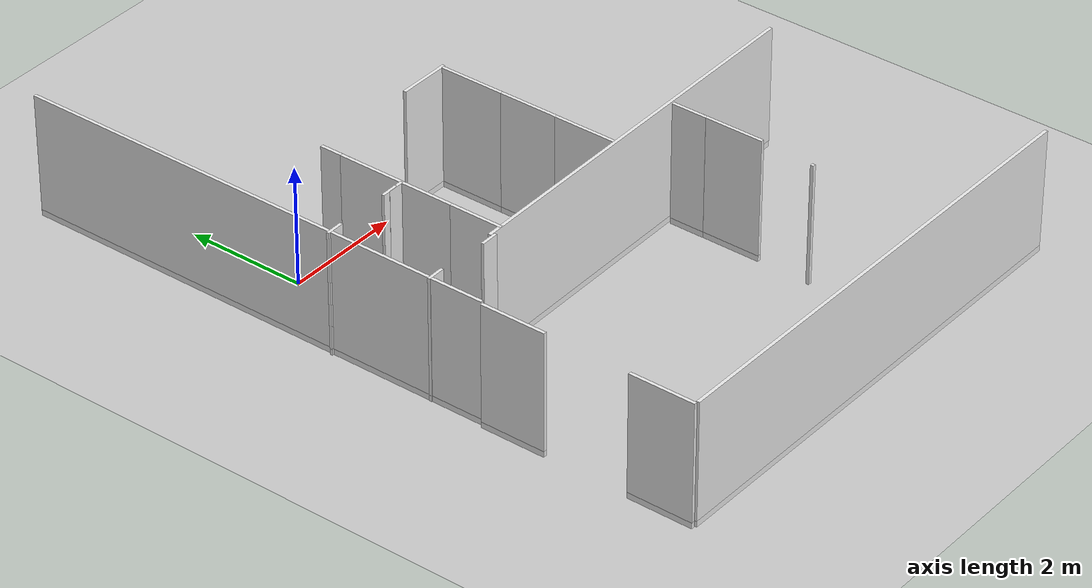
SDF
<sdf version="1.6">
 <world name="default">
  <model name="ground_plane">
   <static>1</static>
   <link name="link">
    <collision name="collision">
     <geometry><plane><normal>0 0 1</normal><size>100 100</size></plane></geometry>
     <surface><friction><ode><mu>100</mu><mu2>50</mu2></ode></friction></surface>
    </collision>
    <visual name="visual">
     <cast_shadows>0</cast_shadows>
     <geometry><plane><normal>0 0 1</normal><size>100 100</size></plane></geometry>
     <material>
      <script><uri>file://media/materials/scripts/gazebo.material</uri><name>Gazebo/Grey</name></script>
     </material>
    </visual>
   </link>
  </model>
  <model name="full_wall_55_8295_2090">
   <link name="link">
    <inertial>
     <mass>50</mass>
     <inertia><ixx>1</ixx><ixy>0</ixy><ixz>0</ixz><iyy>1</iyy><iyz>0</iyz><izz>1</izz></inertia>
    </inertial>
    <visual name="bottom_frame">
     <pose>0 0 0.05 0 -0 0</pose>
     <geometry><box><size>0.055 8.295 0.1</size></box></geometry>
     <material>
      <script><uri>model://base_materials/color/scripts</uri><name>hsr_color/white</name></script>
     </material>
    </visual>
    <collision name="collision_bottom_frame">
     <pose>0 0 0.05 0 -0 0</pose>
     <geometry><box><size>0.055 8.295 0.1</size></box></geometry>
    </collision>
    <visual name="wall">
     <pose>0 0 1.095 0 -0 0</pose>
     <geometry><box><size>0.055 8.295 1.99</size></box></geometry>
     <material>
      <script>
       <uri>model://base_materials/wall/scripts</uri>
       <uri>model://base_materials/wall/textures</uri>
       <name>wall/white_noise</name>
      </script>
     </material>
    </visual>
    <collision name="collision_wall">
     <pose>0 0 1.095 0 -0 0</pose>
     <geometry><box><size>0.055 8.295 1.99</size></box></geometry>
    </collision>
    <velocity_decay><linear>0</linear><angular>0</angular></velocity_decay>
   </link>
   <static>1</static>
   <pose>-0.979337 -0.051627 0 0 -0 0</pose>
  </model>
  <model name="full_wall_outside/home">
   <link name="link">
    <inertial>
     <mass>40.7618</mass>
     <inertia><ixx>0</ixx><ixy>0</ixy><ixz>0</ixz><iyy>0</iyy><iyz>0</iyz><izz>0</izz></inertia>
    </inertial>
    <velocity_decay><linear>0</linear><angular>0</angular></velocity_decay>
    <visual name="bottom_frame">
     <pose>0 0 0.05 0 -0 0</pose>
     <geometry><box><size>0.055 6.76238 0.1</size></box></geometry>
     <material>
      <script><uri>model://base_materials/color/scripts</uri><name>hsr_color/white</name></script>
      <ambient>1 1 1 1</ambient>
      <diffuse>0.5 0.5 0.5 1</diffuse>
      <specular>0 0 0 1</specular>
      <emissive>0 0 0 1</emissive>
     </material>
    </visual>
    <visual name="wall">
     <pose>0 0 1.095 0 -0 0</pose>
     <geometry><box><size>0.055 6.76238 1.99</size></box></geometry>
     <material>
      <script>
       <uri>model://base_materials/wall/scripts</uri>
       <uri>model://base_materials/wall/textures</uri>
       <name>wall/white_noise</name>
      </script>
      <ambient>1 1 1 1</ambient>
      <diffuse>0.5 0.5 0.5 1</diffuse>
      <specular>0 0 0 1</specular>
      <emissive>0 0 0 1</emissive>
     </material>
    </visual>
    <collision name="collision_bottom_frame">
     <pose>0 0 0.05 0 -0 0</pose>
     <geometry><box><size>0.055 6.76238 0.1</size></box></geometry>
     <surface>
      <friction>
       <ode><mu>1</mu><mu2>1</mu2><fdir1>0 0 0</fdir1><slip1>0</slip1><slip2>0</slip2></ode>
       <torsional>
        <coefficient>1</coefficient>
        <patch_radius>0</patch_radius>
        <surface_radius>0</surface_radius>
        <use_patch_radius>1</use_patch_radius>
        <ode><slip>0</slip></ode>
       </torsional>
      </friction>
      <bounce><restitution_coefficient>0</restitution_coefficient><threshold>1e+06</threshold></bounce>
      <contact>
       <collide_without_contact>0</collide_without_contact>
       <collide_without_contact_bitmask>1</collide_without_contact_bitmask>
       <collide_bitmask>1</collide_bitmask>
       <ode>
        <soft_cfm>0</soft_cfm>
        <soft_erp>0.2</soft_erp>
        <kp>1e+13</kp>
        <kd>1</kd>
        <max_vel>0.01</max_vel>
        <min_depth>0</min_depth>
       </ode>
       <bullet>
        <split_impulse>1</split_impulse>
        <split_impulse_penetration_threshold>-0.01</split_impulse_penetration_threshold>
        <soft_cfm>0</soft_cfm>
        <soft_erp>0.2</soft_erp>
        <kp>1e+13</kp>
        <kd>1</kd>
       </bullet>
      </contact>
     </surface>
    </collision>
    <collision name="collision_wall">
     <pose>0 0 1.095 0 -0 0</pose>
     <geometry><box><size>0.055 6.76238 1.99</size></box></geometry>
     <surface>
      <friction>
       <ode><mu>1</mu><mu2>1</mu2><fdir1>0 0 0</fdir1><slip1>0</slip1><slip2>0</slip2></ode>
       <torsional>
        <coefficient>1</coefficient>
        <patch_radius>0</patch_radius>
        <surface_radius>0</surface_radius>
        <use_patch_radius>1</use_patch_radius>
        <ode><slip>0</slip></ode>
       </torsional>
      </friction>
      <bounce><restitution_coefficient>0</restitution_coefficient><threshold>1e+06</threshold></bounce>
      <contact>
       <collide_without_contact>0</collide_without_contact>
       <collide_without_contact_bitmask>1</collide_without_contact_bitmask>
       <collide_bitmask>1</collide_bitmask>
       <ode>
        <soft_cfm>0</soft_cfm>
        <soft_erp>0.2</soft_erp>
        <kp>1e+13</kp>
        <kd>1</kd>
        <max_vel>0.01</max_vel>
        <min_depth>0</min_depth>
       </ode>
       <bullet>
        <split_impulse>1</split_impulse>
        <split_impulse_penetration_threshold>-0.01</split_impulse_penetration_threshold>
        <soft_cfm>0</soft_cfm>
        <soft_erp>0.2</soft_erp>
        <kp>1e+13</kp>
        <kd>1</kd>
       </bullet>
      </contact>
     </surface>
    </collision>
   </link>
   <static>1</static>
   <pose>3.70453 -3.23368 0 0 0 -1.5564</pose>
  </model>
  <model name="slim_wall_0">
   <link name="link">
    <pose>-1.21711 0.435553 0 0 -0 0</pose>
    <inertial>
     <mass>12.4167</mass>
     <inertia><ixx>0</ixx><ixy>0</ixy><ixz>0</ixz><iyy>0</iyy><iyz>0</iyz><izz>0</izz></inertia>
    </inertial>
    <velocity_decay><linear>0</linear><angular>0</angular></velocity_decay>
    <visual name="bottom_frame">
     <pose>0 0 0.05 0 -0 0</pose>
     <geometry><box><size>0.048855 0.300624 0.1</size></box></geometry>
     <material>
      <script><uri>model://base_materials/color/scripts</uri><name>hsr_color/white</name></script>
      <ambient>1 1 1 1</ambient>
      <diffuse>0.5 0.5 0.5 1</diffuse>
      <specular>0 0 0 1</specular>
      <emissive>0 0 0 1</emissive>
     </material>
    </visual>
    <visual name="wall">
     <pose>0 0 1.095 0 -0 0</pose>
     <geometry><box><size>0.048855 0.300624 1.99</size></box></geometry>
     <material>
      <script>
       <uri>model://base_materials/wall/scripts</uri>
       <uri>model://base_materials/wall/textures</uri>
       <name>wall/white_noise</name>
      </script>
      <ambient>1 1 1 1</ambient>
      <diffuse>0.5 0.5 0.5 1</diffuse>
      <specular>0 0 0 1</specular>
      <emissive>0 0 0 1</emissive>
     </material>
    </visual>
    <collision name="collision_bottom_frame">
     <pose>0 0 0.05 0 -0 0</pose>
     <geometry><box><size>0.048855 0.300624 0.1</size></box></geometry>
     <surface>
      <friction>
       <ode><mu>1</mu><mu2>1</mu2><fdir1>0 0 0</fdir1><slip1>0</slip1><slip2>0</slip2></ode>
       <torsional>
        <coefficient>1</coefficient>
        <patch_radius>0</patch_radius>
        <surface_radius>0</surface_radius>
        <use_patch_radius>1</use_patch_radius>
        <ode><slip>0</slip></ode>
       </torsional>
      </friction>
      <bounce><restitution_coefficient>0</restitution_coefficient><threshold>1e+06</threshold></bounce>
      <contact>
       <collide_without_contact>0</collide_without_contact>
       <collide_without_contact_bitmask>1</collide_without_contact_bitmask>
       <collide_bitmask>1</collide_bitmask>
       <ode>
        <soft_cfm>0</soft_cfm>
        <soft_erp>0.2</soft_erp>
        <kp>1e+13</kp>
        <kd>1</kd>
        <max_vel>0.01</max_vel>
        <min_depth>0</min_depth>
       </ode>
       <bullet>
        <split_impulse>1</split_impulse>
        <split_impulse_penetration_threshold>-0.01</split_impulse_penetration_threshold>
        <soft_cfm>0</soft_cfm>
        <soft_erp>0.2</soft_erp>
        <kp>1e+13</kp>
        <kd>1</kd>
       </bullet>
      </contact>
     </surface>
    </collision>
    <collision name="collision_wall">
     <pose>0 0 1.095 0 -0 0</pose>
     <geometry><box><size>0.048855 0.300624 1.99</size></box></geometry>
     <surface>
      <friction>
       <ode><mu>1</mu><mu2>1</mu2><fdir1>0 0 0</fdir1><slip1>0</slip1><slip2>0</slip2></ode>
       <torsional>
        <coefficient>1</coefficient>
        <patch_radius>0</patch_radius>
        <surface_radius>0</surface_radius>
        <use_patch_radius>1</use_patch_radius>
        <ode><slip>0</slip></ode>
       </torsional>
      </friction>
      <bounce><restitution_coefficient>0</restitution_coefficient><threshold>1e+06</threshold></bounce>
      <contact>
       <collide_without_contact>0</collide_without_contact>
       <collide_without_contact_bitmask>1</collide_without_contact_bitmask>
       <collide_bitmask>1</collide_bitmask>
       <ode>
        <soft_cfm>0</soft_cfm>
        <soft_erp>0.2</soft_erp>
        <kp>1e+13</kp>
        <kd>1</kd>
        <max_vel>0.01</max_vel>
        <min_depth>0</min_depth>
       </ode>
       <bullet>
        <split_impulse>1</split_impulse>
        <split_impulse_penetration_threshold>-0.01</split_impulse_penetration_threshold>
        <soft_cfm>0</soft_cfm>
        <soft_erp>0.2</soft_erp>
        <kp>1e+13</kp>
        <kd>1</kd>
       </bullet>
      </contact>
     </surface>
    </collision>
   </link>
   <static>1</static>
   <pose>0.661242 -2.11775 0 0 -0 1.58512</pose>
  </model>
  <model name="slim_wall_0_clone">
   <link name="link">
    <pose>-1.21711 0.435553 0 0 -0 0</pose>
    <inertial>
     <mass>12.4167</mass>
     <inertia><ixx>0</ixx><ixy>0</ixy><ixz>0</ixz><iyy>0</iyy><iyz>0</iyz><izz>0</izz></inertia>
    </inertial>
    <velocity_decay><linear>0</linear><angular>0</angular></velocity_decay>
    <visual name="bottom_frame">
     <pose>0 0 0.05 0 -0 0</pose>
     <geometry><box><size>0.048855 0.300624 0.1</size></box></geometry>
     <material>
      <script><uri>model://base_materials/color/scripts</uri><name>hsr_color/white</name></script>
      <ambient>1 1 1 1</ambient>
      <diffuse>0.5 0.5 0.5 1</diffuse>
      <specular>0 0 0 1</specular>
      <emissive>0 0 0 1</emissive>
     </material>
    </visual>
    <visual name="wall">
     <pose>0 0 1.095 0 -0 0</pose>
     <geometry><box><size>0.048855 0.300624 1.99</size></box></geometry>
     <material>
      <script>
       <uri>model://base_materials/wall/scripts</uri>
       <uri>model://base_materials/wall/textures</uri>
       <name>wall/white_noise</name>
      </script>
      <ambient>1 1 1 1</ambient>
      <diffuse>0.5 0.5 0.5 1</diffuse>
      <specular>0 0 0 1</specular>
      <emissive>0 0 0 1</emissive>
     </material>
    </visual>
    <collision name="collision_bottom_frame">
     <pose>0 0 0.05 0 -0 0</pose>
     <geometry><box><size>0.048855 0.300624 0.1</size></box></geometry>
     <surface>
      <friction>
       <ode><mu>1</mu><mu2>1</mu2><fdir1>0 0 0</fdir1><slip1>0</slip1><slip2>0</slip2></ode>
       <torsional>
        <coefficient>1</coefficient>
        <patch_radius>0</patch_radius>
        <surface_radius>0</surface_radius>
        <use_patch_radius>1</use_patch_radius>
        <ode><slip>0</slip></ode>
       </torsional>
      </friction>
      <bounce><restitution_coefficient>0</restitution_coefficient><threshold>1e+06</threshold></bounce>
      <contact>
       <collide_without_contact>0</collide_without_contact>
       <collide_without_contact_bitmask>1</collide_without_contact_bitmask>
       <collide_bitmask>1</collide_bitmask>
       <ode>
        <soft_cfm>0</soft_cfm>
        <soft_erp>0.2</soft_erp>
        <kp>1e+13</kp>
        <kd>1</kd>
        <max_vel>0.01</max_vel>
        <min_depth>0</min_depth>
       </ode>
       <bullet>
        <split_impulse>1</split_impulse>
        <split_impulse_penetration_threshold>-0.01</split_impulse_penetration_threshold>
        <soft_cfm>0</soft_cfm>
        <soft_erp>0.2</soft_erp>
        <kp>1e+13</kp>
        <kd>1</kd>
       </bullet>
      </contact>
     </surface>
    </collision>
    <collision name="collision_wall">
     <pose>0 0 1.095 0 -0 0</pose>
     <geometry><box><size>0.048855 0.300624 1.99</size></box></geometry>
     <surface>
      <friction>
       <ode><mu>1</mu><mu2>1</mu2><fdir1>0 0 0</fdir1><slip1>0</slip1><slip2>0</slip2></ode>
       <torsional>
        <coefficient>1</coefficient>
        <patch_radius>0</patch_radius>
        <surface_radius>0</surface_radius>
        <use_patch_radius>1</use_patch_radius>
        <ode><slip>0</slip></ode>
       </torsional>
      </friction>
      <bounce><restitution_coefficient>0</restitution_coefficient><threshold>1e+06</threshold></bounce>
      <contact>
       <collide_without_contact>0</collide_without_contact>
       <collide_without_contact_bitmask>1</collide_without_contact_bitmask>
       <collide_bitmask>1</collide_bitmask>
       <ode>
        <soft_cfm>0</soft_cfm>
        <soft_erp>0.2</soft_erp>
        <kp>1e+13</kp>
        <kd>1</kd>
        <max_vel>0.01</max_vel>
        <min_depth>0</min_depth>
       </ode>
       <bullet>
        <split_impulse>1</split_impulse>
        <split_impulse_penetration_threshold>-0.01</split_impulse_penetration_threshold>
        <soft_cfm>0</soft_cfm>
        <soft_erp>0.2</soft_erp>
        <kp>1e+13</kp>
        <kd>1</kd>
       </bullet>
      </contact>
     </surface>
    </collision>
   </link>
   <static>1</static>
   <pose>-0.446815 -2.06538 0 0 -0 1.58512</pose>
  </model>
  <model name="slim_wall_0_clone_0">
   <link name="link">
    <pose>-1.21711 0.435553 0 0 -0 0</pose>
    <inertial>
     <mass>12.4167</mass>
     <inertia><ixx>0</ixx><ixy>0</ixy><ixz>0</ixz><iyy>0</iyy><iyz>0</iyz><izz>0</izz></inertia>
    </inertial>
    <velocity_decay><linear>0</linear><angular>0</angular></velocity_decay>
    <visual name="bottom_frame">
     <pose>0 0 0.05 0 -0 0</pose>
     <geometry><box><size>0.048855 0.300624 0.1</size></box></geometry>
     <material>
      <script><uri>model://base_materials/color/scripts</uri><name>hsr_color/white</name></script>
      <ambient>1 1 1 1</ambient>
      <diffuse>0.5 0.5 0.5 1</diffuse>
      <specular>0 0 0 1</specular>
      <emissive>0 0 0 1</emissive>
     </material>
    </visual>
    <visual name="wall">
     <pose>0 0 1.095 0 -0 0</pose>
     <geometry><box><size>0.048855 0.300624 1.99</size></box></geometry>
     <material>
      <script>
       <uri>model://base_materials/wall/scripts</uri>
       <uri>model://base_materials/wall/textures</uri>
       <name>wall/white_noise</name>
      </script>
      <ambient>1 1 1 1</ambient>
      <diffuse>0.5 0.5 0.5 1</diffuse>
      <specular>0 0 0 1</specular>
      <emissive>0 0 0 1</emissive>
     </material>
    </visual>
    <collision name="collision_bottom_frame">
     <pose>0 0 0.05 0 -0 0</pose>
     <geometry><box><size>0.048855 0.300624 0.1</size></box></geometry>
     <surface>
      <friction>
       <ode><mu>1</mu><mu2>1</mu2><fdir1>0 0 0</fdir1><slip1>0</slip1><slip2>0</slip2></ode>
       <torsional>
        <coefficient>1</coefficient>
        <patch_radius>0</patch_radius>
        <surface_radius>0</surface_radius>
        <use_patch_radius>1</use_patch_radius>
        <ode><slip>0</slip></ode>
       </torsional>
      </friction>
      <bounce><restitution_coefficient>0</restitution_coefficient><threshold>1e+06</threshold></bounce>
      <contact>
       <collide_without_contact>0</collide_without_contact>
       <collide_without_contact_bitmask>1</collide_without_contact_bitmask>
       <collide_bitmask>1</collide_bitmask>
       <ode>
        <soft_cfm>0</soft_cfm>
        <soft_erp>0.2</soft_erp>
        <kp>1e+13</kp>
        <kd>1</kd>
        <max_vel>0.01</max_vel>
        <min_depth>0</min_depth>
       </ode>
       <bullet>
        <split_impulse>1</split_impulse>
        <split_impulse_penetration_threshold>-0.01</split_impulse_penetration_threshold>
        <soft_cfm>0</soft_cfm>
        <soft_erp>0.2</soft_erp>
        <kp>1e+13</kp>
        <kd>1</kd>
       </bullet>
      </contact>
     </surface>
    </collision>
    <collision name="collision_wall">
     <pose>0 0 1.095 0 -0 0</pose>
     <geometry><box><size>0.048855 0.300624 1.99</size></box></geometry>
     <surface>
      <friction>
       <ode><mu>1</mu><mu2>1</mu2><fdir1>0 0 0</fdir1><slip1>0</slip1><slip2>0</slip2></ode>
       <torsional>
        <coefficient>1</coefficient>
        <patch_radius>0</patch_radius>
        <surface_radius>0</surface_radius>
        <use_patch_radius>1</use_patch_radius>
        <ode><slip>0</slip></ode>
       </torsional>
      </friction>
      <bounce><restitution_coefficient>0</restitution_coefficient><threshold>1e+06</threshold></bounce>
      <contact>
       <collide_without_contact>0</collide_without_contact>
       <collide_without_contact_bitmask>1</collide_without_contact_bitmask>
       <collide_bitmask>1</collide_bitmask>
       <ode>
        <soft_cfm>0</soft_cfm>
        <soft_erp>0.2</soft_erp>
        <kp>1e+13</kp>
        <kd>1</kd>
        <max_vel>0.01</max_vel>
        <min_depth>0</min_depth>
       </ode>
       <bullet>
        <split_impulse>1</split_impulse>
        <split_impulse_penetration_threshold>-0.01</split_impulse_penetration_threshold>
        <soft_cfm>0</soft_cfm>
        <soft_erp>0.2</soft_erp>
        <kp>1e+13</kp>
        <kd>1</kd>
       </bullet>
      </contact>
     </surface>
    </collision>
   </link>
   <static>1</static>
   <pose>-0.467567 -0.272556 0 0 -0 1.58512</pose>
  </model>
  <model name="slim_wall_0_clone_1">
   <link name="link">
    <pose>-1.21711 0.435553 0 0 -0 0</pose>
    <inertial>
     <mass>12.4167</mass>
     <inertia><ixx>0</ixx><ixy>0</ixy><ixz>0</ixz><iyy>0</iyy><iyz>0</iyz><izz>0</izz></inertia>
    </inertial>
    <velocity_decay><linear>0</linear><angular>0</angular></velocity_decay>
    <visual name="bottom_frame">
     <pose>0 0 0.05 0 -0 0</pose>
     <geometry><box><size>0.048855 0.300624 0.1</size></box></geometry>
     <material>
      <script><uri>model://base_materials/color/scripts</uri><name>hsr_color/white</name></script>
      <ambient>1 1 1 1</ambient>
      <diffuse>0.5 0.5 0.5 1</diffuse>
      <specular>0 0 0 1</specular>
      <emissive>0 0 0 1</emissive>
     </material>
    </visual>
    <visual name="wall">
     <pose>0 0 1.095 0 -0 0</pose>
     <geometry><box><size>0.048855 0.300624 1.99</size></box></geometry>
     <material>
      <script>
       <uri>model://base_materials/wall/scripts</uri>
       <uri>model://base_materials/wall/textures</uri>
       <name>wall/white_noise</name>
      </script>
      <ambient>1 1 1 1</ambient>
      <diffuse>0.5 0.5 0.5 1</diffuse>
      <specular>0 0 0 1</specular>
      <emissive>0 0 0 1</emissive>
     </material>
    </visual>
    <collision name="collision_bottom_frame">
     <pose>0 0 0.05 0 -0 0</pose>
     <geometry><box><size>0.048855 0.300624 0.1</size></box></geometry>
     <surface>
      <friction>
       <ode><mu>1</mu><mu2>1</mu2><fdir1>0 0 0</fdir1><slip1>0</slip1><slip2>0</slip2></ode>
       <torsional>
        <coefficient>1</coefficient>
        <patch_radius>0</patch_radius>
        <surface_radius>0</surface_radius>
        <use_patch_radius>1</use_patch_radius>
        <ode><slip>0</slip></ode>
       </torsional>
      </friction>
      <bounce><restitution_coefficient>0</restitution_coefficient><threshold>1e+06</threshold></bounce>
      <contact>
       <collide_without_contact>0</collide_without_contact>
       <collide_without_contact_bitmask>1</collide_without_contact_bitmask>
       <collide_bitmask>1</collide_bitmask>
       <ode>
        <soft_cfm>0</soft_cfm>
        <soft_erp>0.2</soft_erp>
        <kp>1e+13</kp>
        <kd>1</kd>
        <max_vel>0.01</max_vel>
        <min_depth>0</min_depth>
       </ode>
       <bullet>
        <split_impulse>1</split_impulse>
        <split_impulse_penetration_threshold>-0.01</split_impulse_penetration_threshold>
        <soft_cfm>0</soft_cfm>
        <soft_erp>0.2</soft_erp>
        <kp>1e+13</kp>
        <kd>1</kd>
       </bullet>
      </contact>
     </surface>
    </collision>
    <collision name="collision_wall">
     <pose>0 0 1.095 0 -0 0</pose>
     <geometry><box><size>0.048855 0.300624 1.99</size></box></geometry>
     <surface>
      <friction>
       <ode><mu>1</mu><mu2>1</mu2><fdir1>0 0 0</fdir1><slip1>0</slip1><slip2>0</slip2></ode>
       <torsional>
        <coefficient>1</coefficient>
        <patch_radius>0</patch_radius>
        <surface_radius>0</surface_radius>
        <use_patch_radius>1</use_patch_radius>
        <ode><slip>0</slip></ode>
       </torsional>
      </friction>
      <bounce><restitution_coefficient>0</restitution_coefficient><threshold>1e+06</threshold></bounce>
      <contact>
       <collide_without_contact>0</collide_without_contact>
       <collide_without_contact_bitmask>1</collide_without_contact_bitmask>
       <collide_bitmask>1</collide_bitmask>
       <ode>
        <soft_cfm>0</soft_cfm>
        <soft_erp>0.2</soft_erp>
        <kp>1e+13</kp>
        <kd>1</kd>
        <max_vel>0.01</max_vel>
        <min_depth>0</min_depth>
       </ode>
       <bullet>
        <split_impulse>1</split_impulse>
        <split_impulse_penetration_threshold>-0.01</split_impulse_penetration_threshold>
        <soft_cfm>0</soft_cfm>
        <soft_erp>0.2</soft_erp>
        <kp>1e+13</kp>
        <kd>1</kd>
       </bullet>
      </contact>
     </surface>
    </collision>
   </link>
   <static>1</static>
   <pose>0.723285 -0.275276 0 0 -0 1.58512</pose>
  </model>
  <model name="slim_wall_0_clone_2">
   <link name="link">
    <pose>-1.21711 0.435553 0 0 -0 0</pose>
    <inertial>
     <mass>12.4167</mass>
     <inertia><ixx>0</ixx><ixy>0</ixy><ixz>0</ixz><iyy>0</iyy><iyz>0</iyz><izz>0</izz></inertia>
    </inertial>
    <velocity_decay><linear>0</linear><angular>0</angular></velocity_decay>
    <visual name="bottom_frame">
     <pose>0 0 0.05 0 -0 0</pose>
     <geometry><box><size>0.048855 0.300624 0.1</size></box></geometry>
     <material>
      <script><uri>model://base_materials/color/scripts</uri><name>hsr_color/white</name></script>
      <ambient>1 1 1 1</ambient>
      <diffuse>0.5 0.5 0.5 1</diffuse>
      <specular>0 0 0 1</specular>
      <emissive>0 0 0 1</emissive>
     </material>
    </visual>
    <visual name="wall">
     <pose>0 0 1.095 0 -0 0</pose>
     <geometry><box><size>0.048855 0.300624 1.99</size></box></geometry>
     <material>
      <script>
       <uri>model://base_materials/wall/scripts</uri>
       <uri>model://base_materials/wall/textures</uri>
       <name>wall/white_noise</name>
      </script>
      <ambient>1 1 1 1</ambient>
      <diffuse>0.5 0.5 0.5 1</diffuse>
      <specular>0 0 0 1</specular>
      <emissive>0 0 0 1</emissive>
     </material>
    </visual>
    <collision name="collision_bottom_frame">
     <pose>0 0 0.05 0 -0 0</pose>
     <geometry><box><size>0.048855 0.300624 0.1</size></box></geometry>
     <surface>
      <friction>
       <ode><mu>1</mu><mu2>1</mu2><fdir1>0 0 0</fdir1><slip1>0</slip1><slip2>0</slip2></ode>
       <torsional>
        <coefficient>1</coefficient>
        <patch_radius>0</patch_radius>
        <surface_radius>0</surface_radius>
        <use_patch_radius>1</use_patch_radius>
        <ode><slip>0</slip></ode>
       </torsional>
      </friction>
      <bounce><restitution_coefficient>0</restitution_coefficient><threshold>1e+06</threshold></bounce>
      <contact>
       <collide_without_contact>0</collide_without_contact>
       <collide_without_contact_bitmask>1</collide_without_contact_bitmask>
       <collide_bitmask>1</collide_bitmask>
       <ode>
        <soft_cfm>0</soft_cfm>
        <soft_erp>0.2</soft_erp>
        <kp>1e+13</kp>
        <kd>1</kd>
        <max_vel>0.01</max_vel>
        <min_depth>0</min_depth>
       </ode>
       <bullet>
        <split_impulse>1</split_impulse>
        <split_impulse_penetration_threshold>-0.01</split_impulse_penetration_threshold>
        <soft_cfm>0</soft_cfm>
        <soft_erp>0.2</soft_erp>
        <kp>1e+13</kp>
        <kd>1</kd>
       </bullet>
      </contact>
     </surface>
    </collision>
    <collision name="collision_wall">
     <pose>0 0 1.095 0 -0 0</pose>
     <geometry><box><size>0.048855 0.300624 1.99</size></box></geometry>
     <surface>
      <friction>
       <ode><mu>1</mu><mu2>1</mu2><fdir1>0 0 0</fdir1><slip1>0</slip1><slip2>0</slip2></ode>
       <torsional>
        <coefficient>1</coefficient>
        <patch_radius>0</patch_radius>
        <surface_radius>0</surface_radius>
        <use_patch_radius>1</use_patch_radius>
        <ode><slip>0</slip></ode>
       </torsional>
      </friction>
      <bounce><restitution_coefficient>0</restitution_coefficient><threshold>1e+06</threshold></bounce>
      <contact>
       <collide_without_contact>0</collide_without_contact>
       <collide_without_contact_bitmask>1</collide_without_contact_bitmask>
       <collide_bitmask>1</collide_bitmask>
       <ode>
        <soft_cfm>0</soft_cfm>
        <soft_erp>0.2</soft_erp>
        <kp>1e+13</kp>
        <kd>1</kd>
        <max_vel>0.01</max_vel>
        <min_depth>0</min_depth>
       </ode>
       <bullet>
        <split_impulse>1</split_impulse>
        <split_impulse_penetration_threshold>-0.01</split_impulse_penetration_threshold>
        <soft_cfm>0</soft_cfm>
        <soft_erp>0.2</soft_erp>
        <kp>1e+13</kp>
        <kd>1</kd>
       </bullet>
      </contact>
     </surface>
    </collision>
   </link>
   <static>1</static>
   <pose>0.847855 -0.275286 0 0 -0 1.58512</pose>
  </model>
  <model name="full_wall_55_1100_2090_0">
   <link name="link">
    <inertial>
     <mass>50</mass>
     <inertia><ixx>1</ixx><ixy>0</ixy><ixz>0</ixz><iyy>1</iyy><iyz>0</iyz><izz>1</izz></inertia>
    </inertial>
    <visual name="bottom_frame">
     <pose>0 0 0.05 0 -0 0</pose>
     <geometry><box><size>0.055 1.1 0.1</size></box></geometry>
     <material>
      <script><uri>model://base_materials/color/scripts</uri><name>hsr_color/white</name></script>
     </material>
    </visual>
    <collision name="collision_bottom_frame">
     <pose>0 0 0.05 0 -0 0</pose>
     <geometry><box><size>0.055 1.1 0.1</size></box></geometry>
    </collision>
    <visual name="wall">
     <pose>0 0 1.095 0 -0 0</pose>
     <geometry><box><size>0.055 1.1 1.99</size></box></geometry>
     <material>
      <script>
       <uri>model://base_materials/wall/scripts</uri>
       <uri>model://base_materials/wall/textures</uri>
       <name>wall/white_noise</name>
      </script>
     </material>
    </visual>
    <collision name="collision_wall">
     <pose>0 0 1.095 0 -0 0</pose>
     <geometry><box><size>0.055 1.1 1.99</size></box></geometry>
    </collision>
    <velocity_decay><linear>0</linear><angular>0</angular></velocity_decay>
   </link>
   <static>1</static>
   <pose>0.574353 -2.02901 0 0 -0 0</pose>
  </model>
  <model name="full_wall_55_1100_2090_1">
   <link name="link">
    <inertial>
     <mass>50</mass>
     <inertia><ixx>1</ixx><ixy>0</ixy><ixz>0</ixz><iyy>1</iyy><iyz>0</iyz><izz>1</izz></inertia>
    </inertial>
    <visual name="bottom_frame">
     <pose>0 0 0.05 0 -0 0</pose>
     <geometry><box><size>0.055 1.1 0.1</size></box></geometry>
     <material>
      <script><uri>model://base_materials/color/scripts</uri><name>hsr_color/white</name></script>
     </material>
    </visual>
    <collision name="collision_bottom_frame">
     <pose>0 0 0.05 0 -0 0</pose>
     <geometry><box><size>0.055 1.1 0.1</size></box></geometry>
    </collision>
    <visual name="wall">
     <pose>0 0 1.095 0 -0 0</pose>
     <geometry><box><size>0.055 1.1 1.99</size></box></geometry>
     <material>
      <script>
       <uri>model://base_materials/wall/scripts</uri>
       <uri>model://base_materials/wall/textures</uri>
       <name>wall/white_noise</name>
      </script>
     </material>
    </visual>
    <collision name="collision_wall">
     <pose>0 0 1.095 0 -0 0</pose>
     <geometry><box><size>0.055 1.1 1.99</size></box></geometry>
    </collision>
    <velocity_decay><linear>0</linear><angular>0</angular></velocity_decay>
   </link>
   <static>1</static>
   <pose>0.578006 -0.931267 0 0 -0 0</pose>
  </model>
  <model name="full_wall_55_600_2090">
   <link name="link">
    <inertial>
     <mass>50</mass>
     <inertia><ixx>1</ixx><ixy>0</ixy><ixz>0</ixz><iyy>1</iyy><iyz>0</iyz><izz>1</izz></inertia>
    </inertial>
    <visual name="bottom_frame">
     <pose>0 0 0.05 0 -0 0</pose>
     <geometry><box><size>0.055 0.6 0.1</size></box></geometry>
     <material>
      <script><uri>model://base_materials/color/scripts</uri><name>hsr_color/white</name></script>
     </material>
    </visual>
    <collision name="collision_bottom_frame">
     <pose>0 0 0.05 0 -0 0</pose>
     <geometry><box><size>0.055 0.6 0.1</size></box></geometry>
    </collision>
    <visual name="wall">
     <pose>0 0 1.095 0 -0 0</pose>
     <geometry><box><size>0.055 0.6 1.99</size></box></geometry>
     <material>
      <script>
       <uri>model://base_materials/wall/scripts</uri>
       <uri>model://base_materials/wall/textures</uri>
       <name>wall/white_noise</name>
      </script>
     </material>
    </visual>
    <collision name="collision_wall">
     <pose>0 0 1.095 0 -0 0</pose>
     <geometry><box><size>0.055 0.6 1.99</size></box></geometry>
    </collision>
    <velocity_decay><linear>0</linear><angular>0</angular></velocity_decay>
   </link>
   <static>1</static>
   <pose>0.5806 -0.313776 0 0 -0 0</pose>
  </model>
  <model name="full_wall_55_900_2090_0">
   <link name="link">
    <inertial>
     <mass>50</mass>
     <inertia><ixx>1</ixx><ixy>0</ixy><ixz>0</ixz><iyy>1</iyy><iyz>0</iyz><izz>1</izz></inertia>
    </inertial>
    <visual name="bottom_frame">
     <pose>0 0 0.05 0 -0 0</pose>
     <geometry><box><size>0.055 0.9 0.1</size></box></geometry>
     <material>
      <script><uri>model://base_materials/color/scripts</uri><name>hsr_color/white</name></script>
     </material>
    </visual>
    <collision name="collision_bottom_frame">
     <pose>0 0 0.05 0 -0 0</pose>
     <geometry><box><size>0.055 0.9 0.1</size></box></geometry>
    </collision>
    <visual name="wall">
     <pose>0 0 1.095 0 -0 0</pose>
     <geometry><box><size>0.055 0.9 1.99</size></box></geometry>
     <material>
      <script>
       <uri>model://base_materials/wall/scripts</uri>
       <uri>model://base_materials/wall/textures</uri>
       <name>wall/white_noise</name>
      </script>
     </material>
    </visual>
    <collision name="collision_wall">
     <pose>0 0 1.095 0 -0 0</pose>
     <geometry><box><size>0.055 0.9 1.99</size></box></geometry>
    </collision>
    <velocity_decay><linear>0</linear><angular>0</angular></velocity_decay>
   </link>
   <static>1</static>
   <pose>0.573697 -2.84416 0 0 -0 0</pose>
  </model>
  <model name="full_wall_55_900_2090_1">
   <link name="link">
    <inertial>
     <mass>50</mass>
     <inertia><ixx>1</ixx><ixy>0</ixy><ixz>0</ixz><iyy>1</iyy><iyz>0</iyz><izz>1</izz></inertia>
    </inertial>
    <visual name="bottom_frame">
     <pose>0 0 0.05 0 -0 0</pose>
     <geometry><box><size>0.055 0.9 0.1</size></box></geometry>
     <material>
      <script><uri>model://base_materials/color/scripts</uri><name>hsr_color/white</name></script>
     </material>
    </visual>
    <collision name="collision_bottom_frame">
     <pose>0 0 0.05 0 -0 0</pose>
     <geometry><box><size>0.055 0.9 0.1</size></box></geometry>
    </collision>
    <visual name="wall">
     <pose>0 0 1.095 0 -0 0</pose>
     <geometry><box><size>0.055 0.9 1.99</size></box></geometry>
     <material>
      <script>
       <uri>model://base_materials/wall/scripts</uri>
       <uri>model://base_materials/wall/textures</uri>
       <name>wall/white_noise</name>
      </script>
     </material>
    </visual>
    <collision name="collision_wall">
     <pose>0 0 1.095 0 -0 0</pose>
     <geometry><box><size>0.055 0.9 1.99</size></box></geometry>
    </collision>
    <velocity_decay><linear>0</linear><angular>0</angular></velocity_decay>
   </link>
   <static>1</static>
   <pose>2.87046 -0.024239 -0.016667 0 -0 1.5708</pose>
  </model>
  <model name="full_wall_55_1100_2090_2">
   <link name="link">
    <inertial>
     <mass>50</mass>
     <inertia><ixx>1</ixx><ixy>0</ixy><ixz>0</ixz><iyy>1</iyy><iyz>0</iyz><izz>1</izz></inertia>
    </inertial>
    <visual name="bottom_frame">
     <pose>0 0 0.05 0 -0 0</pose>
     <geometry><box><size>0.055 1.1 0.1</size></box></geometry>
     <material>
      <script><uri>model://base_materials/color/scripts</uri><name>hsr_color/white</name></script>
     </material>
    </visual>
    <collision name="collision_bottom_frame">
     <pose>0 0 0.05 0 -0 0</pose>
     <geometry><box><size>0.055 1.1 0.1</size></box></geometry>
    </collision>
    <visual name="wall">
     <pose>0 0 1.095 0 -0 0</pose>
     <geometry><box><size>0.055 1.1 1.99</size></box></geometry>
     <material>
      <script>
       <uri>model://base_materials/wall/scripts</uri>
       <uri>model://base_materials/wall/textures</uri>
       <name>wall/white_noise</name>
      </script>
     </material>
    </visual>
    <collision name="collision_wall">
     <pose>0 0 1.095 0 -0 0</pose>
     <geometry><box><size>0.055 1.1 1.99</size></box></geometry>
    </collision>
    <velocity_decay><linear>0</linear><angular>0</angular></velocity_decay>
   </link>
   <static>1</static>
   <pose>3.27026 -0.590921 -0.016667 0 -0 2e-06</pose>
  </model>
  <model name="full_wall_55_1100_2090_2_clone">
   <link name="link">
    <inertial>
     <mass>50</mass>
     <inertia><ixx>1</ixx><ixy>0</ixy><ixz>0</ixz><iyy>1</iyy><iyz>0</iyz><izz>1</izz></inertia>
    </inertial>
    <visual name="bottom_frame">
     <pose>0 0 0.05 0 -0 0</pose>
     <geometry><box><size>0.055 1.1 0.1</size></box></geometry>
     <material>
      <script><uri>model://base_materials/color/scripts</uri><name>hsr_color/white</name></script>
     </material>
    </visual>
    <collision name="collision_bottom_frame">
     <pose>0 0 0.05 0 -0 0</pose>
     <geometry><box><size>0.055 1.1 0.1</size></box></geometry>
    </collision>
    <visual name="wall">
     <pose>0 0 1.095 0 -0 0</pose>
     <geometry><box><size>0.055 1.1 1.99</size></box></geometry>
     <material>
      <script>
       <uri>model://base_materials/wall/scripts</uri>
       <uri>model://base_materials/wall/textures</uri>
       <name>wall/white_noise</name>
      </script>
     </material>
    </visual>
    <collision name="collision_wall">
     <pose>0 0 1.095 0 -0 0</pose>
     <geometry><box><size>0.055 1.1 1.99</size></box></geometry>
    </collision>
    <velocity_decay><linear>0</linear><angular>0</angular></velocity_decay>
   </link>
   <static>1</static>
   <pose>3.27086 -1.69063 -0.016667 0 -0 2e-06</pose>
  </model>
  <model name="full_wall_55_1100_2090_2_clone_clone">
   <link name="link">
    <inertial>
     <mass>50</mass>
     <inertia><ixx>1</ixx><ixy>0</ixy><ixz>0</ixz><iyy>1</iyy><iyz>0</iyz><izz>1</izz></inertia>
    </inertial>
    <visual name="bottom_frame">
     <pose>0 0 0.05 0 -0 0</pose>
     <geometry><box><size>0.055 1.1 0.1</size></box></geometry>
     <material>
      <script><uri>model://base_materials/color/scripts</uri><name>hsr_color/white</name></script>
     </material>
    </visual>
    <collision name="collision_bottom_frame">
     <pose>0 0 0.05 0 -0 0</pose>
     <geometry><box><size>0.055 1.1 0.1</size></box></geometry>
    </collision>
    <visual name="wall">
     <pose>0 0 1.095 0 -0 0</pose>
     <geometry><box><size>0.055 1.1 1.99</size></box></geometry>
     <material>
      <script>
       <uri>model://base_materials/wall/scripts</uri>
       <uri>model://base_materials/wall/textures</uri>
       <name>wall/white_noise</name>
      </script>
     </material>
    </visual>
    <collision name="collision_wall">
     <pose>0 0 1.095 0 -0 0</pose>
     <geometry><box><size>0.055 1.1 1.99</size></box></geometry>
    </collision>
    <velocity_decay><linear>0</linear><angular>0</angular></velocity_decay>
   </link>
   <static>1</static>
   <pose>3.26847 -2.69166 -0.016667 0 -0 2e-06</pose>
  </model>
  <model name="full_wall_55_1100_2090_4">
   <link name="link">
    <inertial>
     <mass>50</mass>
     <inertia><ixx>1</ixx><ixy>0</ixy><ixz>0</ixz><iyy>1</iyy><iyz>0</iyz><izz>1</izz></inertia>
    </inertial>
    <visual name="bottom_frame">
     <pose>0 0 0.05 0 -0 0</pose>
     <geometry><box><size>0.055 1.1 0.1</size></box></geometry>
     <material>
      <script><uri>model://base_materials/color/scripts</uri><name>hsr_color/white</name></script>
     </material>
    </visual>
    <collision name="collision_bottom_frame">
     <pose>0 0 0.05 0 -0 0</pose>
     <geometry><box><size>0.055 1.1 0.1</size></box></geometry>
    </collision>
    <visual name="wall">
     <pose>0 0 1.095 0 -0 0</pose>
     <geometry><box><size>0.055 1.1 1.99</size></box></geometry>
     <material>
      <script>
       <uri>model://base_materials/wall/scripts</uri>
       <uri>model://base_materials/wall/textures</uri>
       <name>wall/white_noise</name>
      </script>
     </material>
    </visual>
    <collision name="collision_wall">
     <pose>0 0 1.095 0 -0 0</pose>
     <geometry><box><size>0.055 1.1 1.99</size></box></geometry>
    </collision>
    <velocity_decay><linear>0</linear><angular>0</angular></velocity_decay>
   </link>
   <static>1</static>
   <pose>4.56901 -4.32119 0 0 -0 0</pose>
  </model>
  <model name="wall_frame_55_55_2090_0">
   <link name="link">
    <inertial>
     <mass>50</mass>
     <inertia><ixx>1</ixx><ixy>0</ixy><ixz>0</ixz><iyy>1</iyy><iyz>0</iyz><izz>1</izz></inertia>
    </inertial>
    <visual name="_frame">
     <pose>0 0 1.045 0 -0 0</pose>
     <geometry><box><size>0.055 0.055 2.09</size></box></geometry>
     <material>
      <script><uri>model://base_materials/color/scripts</uri><name>hsr_color/white</name></script>
     </material>
    </visual>
    <collision name="collision_frame">
     <pose>0 0 1.045 0 -0 0</pose>
     <geometry><box><size>0.055 0.055 2.09</size></box></geometry>
    </collision>
    <velocity_decay><linear>0</linear><angular>0</angular></velocity_decay>
   </link>
   <static>1</static>
   <pose>4.57147 -5.74831 -0.051841 0 -0 0.00348</pose>
  </model>
  <model name="full_wall_55_600_2090_1">
   <link name="link">
    <inertial>
     <mass>50</mass>
     <inertia><ixx>1</ixx><ixy>0</ixy><ixz>0</ixz><iyy>1</iyy><iyz>0</iyz><izz>1</izz></inertia>
    </inertial>
    <visual name="bottom_frame">
     <pose>0 0 0.05 0 -0 0</pose>
     <geometry><box><size>0.055 0.6 0.1</size></box></geometry>
     <material>
      <script><uri>model://base_materials/color/scripts</uri><name>hsr_color/white</name></script>
     </material>
    </visual>
    <collision name="collision_bottom_frame">
     <pose>0 0 0.05 0 -0 0</pose>
     <geometry><box><size>0.055 0.6 0.1</size></box></geometry>
    </collision>
    <visual name="wall">
     <pose>0 0 1.095 0 -0 0</pose>
     <geometry><box><size>0.055 0.6 1.99</size></box></geometry>
     <material>
      <script>
       <uri>model://base_materials/wall/scripts</uri>
       <uri>model://base_materials/wall/textures</uri>
       <name>wall/white_noise</name>
      </script>
     </material>
    </visual>
    <collision name="collision_wall">
     <pose>0 0 1.095 0 -0 0</pose>
     <geometry><box><size>0.055 0.6 1.99</size></box></geometry>
    </collision>
    <velocity_decay><linear>0</linear><angular>0</angular></velocity_decay>
   </link>
   <static>1</static>
   <pose>4.56614 -3.57658 0 0 -0 0</pose>
  </model>
  <model name="full_wall_55_1100_2090_5">
   <link name="link">
    <inertial>
     <mass>50</mass>
     <inertia><ixx>1</ixx><ixy>0</ixy><ixz>0</ixz><iyy>1</iyy><iyz>0</iyz><izz>1</izz></inertia>
    </inertial>
    <visual name="bottom_frame">
     <pose>0 0 0.05 0 -0 0</pose>
     <geometry><box><size>0.055 1.1 0.1</size></box></geometry>
     <material>
      <script><uri>model://base_materials/color/scripts</uri><name>hsr_color/white</name></script>
     </material>
    </visual>
    <collision name="collision_bottom_frame">
     <pose>0 0 0.05 0 -0 0</pose>
     <geometry><box><size>0.055 1.1 0.1</size></box></geometry>
    </collision>
    <visual name="wall">
     <pose>0 0 1.095 0 -0 0</pose>
     <geometry><box><size>0.055 1.1 1.99</size></box></geometry>
     <material>
      <script>
       <uri>model://base_materials/wall/scripts</uri>
       <uri>model://base_materials/wall/textures</uri>
       <name>wall/white_noise</name>
      </script>
     </material>
    </visual>
    <collision name="collision_wall">
     <pose>0 0 1.095 0 -0 0</pose>
     <geometry><box><size>0.055 1.1 1.99</size></box></geometry>
    </collision>
    <velocity_decay><linear>0</linear><angular>0</angular></velocity_decay>
   </link>
   <static>1</static>
   <pose>-1.02739 -4.77667 0 0 -0 0</pose>
  </model>
  <model name="full_wall_55_1100_2090_5_clone">
   <link name="link">
    <inertial>
     <mass>50</mass>
     <inertia><ixx>1</ixx><ixy>0</ixy><ixz>0</ixz><iyy>1</iyy><iyz>0</iyz><izz>1</izz></inertia>
    </inertial>
    <visual name="bottom_frame">
     <pose>0 0 0.05 0 -0 0</pose>
     <geometry><box><size>0.055 1.1 0.1</size></box></geometry>
     <material>
      <script><uri>model://base_materials/color/scripts</uri><name>hsr_color/white</name></script>
     </material>
    </visual>
    <collision name="collision_bottom_frame">
     <pose>0 0 0.05 0 -0 0</pose>
     <geometry><box><size>0.055 1.1 0.1</size></box></geometry>
    </collision>
    <visual name="wall">
     <pose>0 0 1.095 0 -0 0</pose>
     <geometry><box><size>0.055 1.1 1.99</size></box></geometry>
     <material>
      <script>
       <uri>model://base_materials/wall/scripts</uri>
       <uri>model://base_materials/wall/textures</uri>
       <name>wall/white_noise</name>
      </script>
     </material>
    </visual>
    <collision name="collision_wall">
     <pose>0 0 1.095 0 -0 0</pose>
     <geometry><box><size>0.055 1.1 1.99</size></box></geometry>
    </collision>
    <velocity_decay><linear>0</linear><angular>0</angular></velocity_decay>
   </link>
   <static>1</static>
   <pose>-1.04004 -7.3157 0 0 -0 0</pose>
  </model>
  <model name="full_wall_55_8295_2090_0_clone">
   <link name="link">
    <inertial>
     <mass>50</mass>
     <inertia><ixx>1</ixx><ixy>0</ixy><ixz>0</ixz><iyy>1</iyy><iyz>0</iyz><izz>1</izz></inertia>
    </inertial>
    <visual name="bottom_frame">
     <pose>0 0 0.05 0 -0 0</pose>
     <geometry><box><size>0.055 8.295 0.1</size></box></geometry>
     <material>
      <script><uri>model://base_materials/color/scripts</uri><name>hsr_color/white</name></script>
     </material>
    </visual>
    <collision name="collision_bottom_frame">
     <pose>0 0 0.05 0 -0 0</pose>
     <geometry><box><size>0.055 8.295 0.1</size></box></geometry>
    </collision>
    <visual name="wall">
     <pose>0 0 1.095 0 -0 0</pose>
     <geometry><box><size>0.055 8.295 1.99</size></box></geometry>
     <material>
      <script>
       <uri>model://base_materials/wall/scripts</uri>
       <uri>model://base_materials/wall/textures</uri>
       <name>wall/white_noise</name>
      </script>
     </material>
    </visual>
    <collision name="collision_wall">
     <pose>0 0 1.095 0 -0 0</pose>
     <geometry><box><size>0.055 8.295 1.99</size></box></geometry>
    </collision>
    <velocity_decay><linear>0</linear><angular>0</angular></velocity_decay>
   </link>
   <static>1</static>
   <pose>3.15079 -7.88187 0 0 0 -1.57394</pose>
  </model>
 </world>
</sdf>
